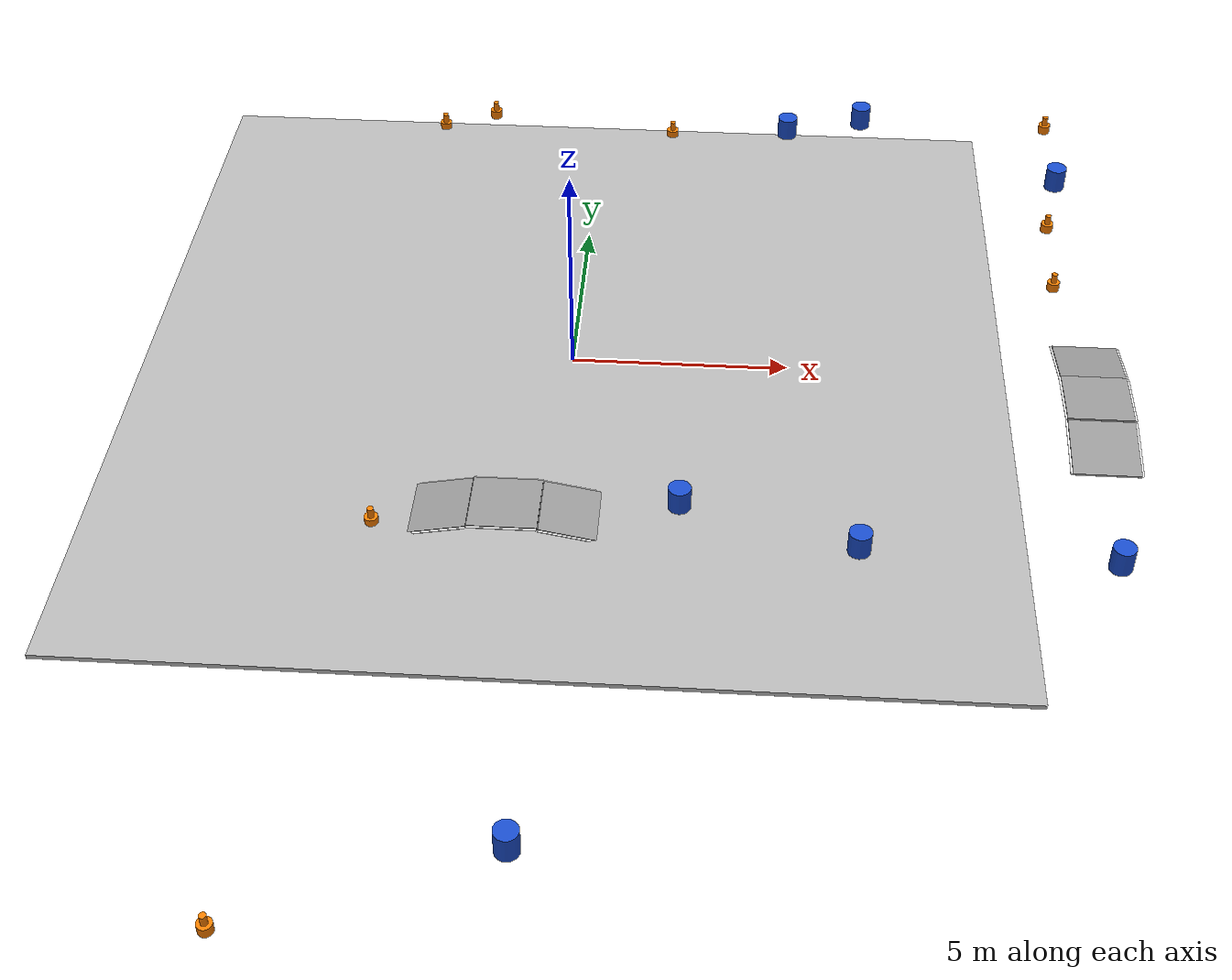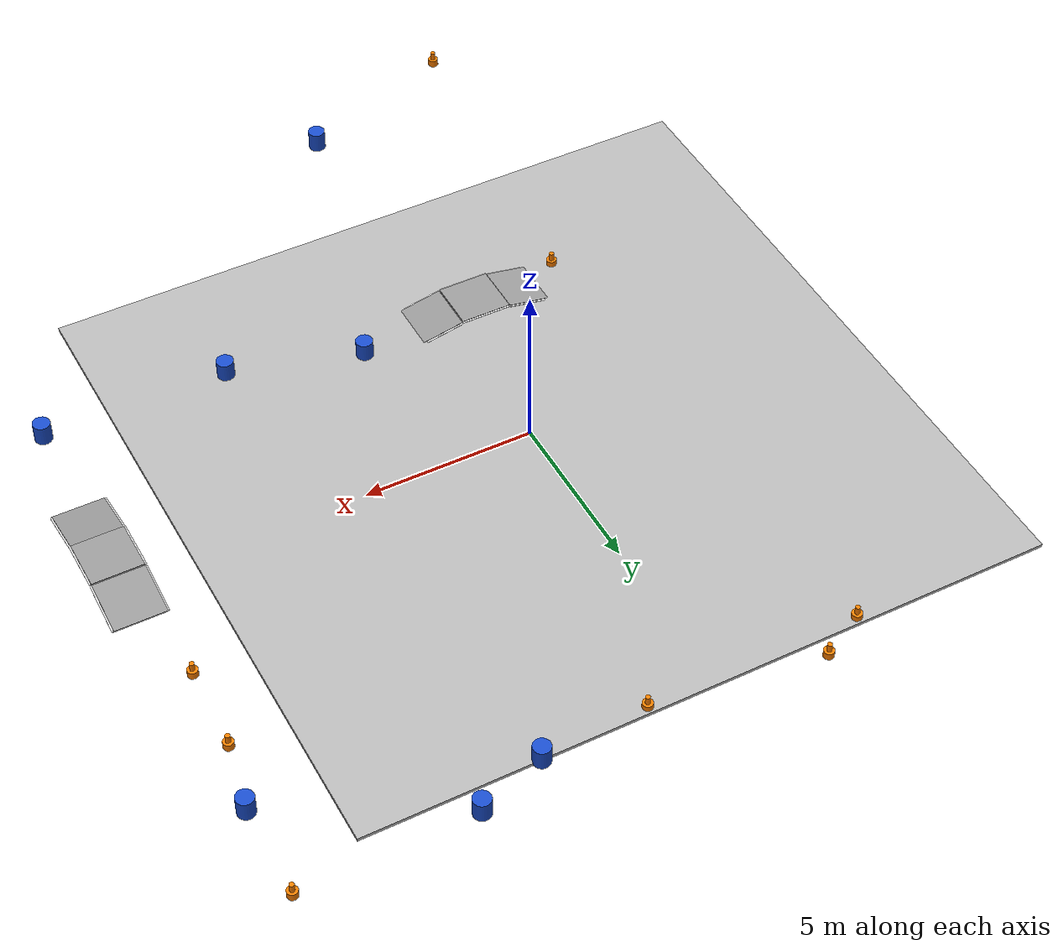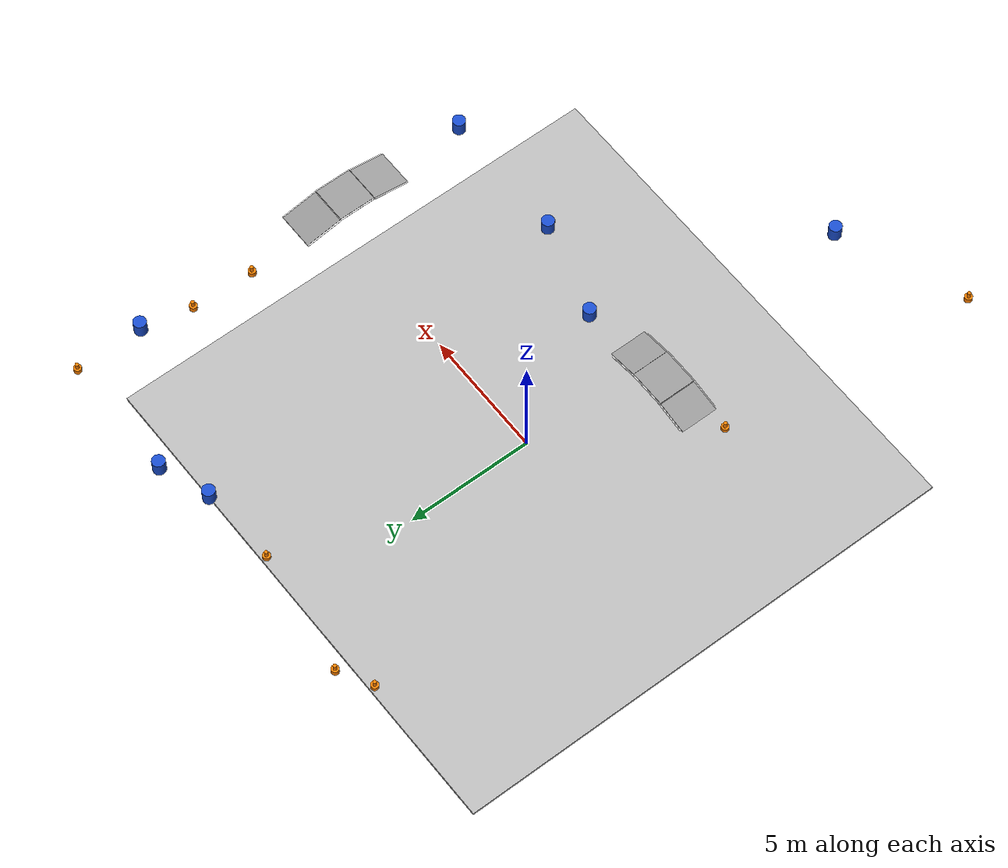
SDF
<?xml version="1.0" ?>
<sdf version="1.6">
  <world name="new_world">

    <physics type="ode">
      <max_step_size>0.001</max_step_size>
      <real_time_update_rate>1000</real_time_update_rate>
    </physics>

    <light type="directional" name="sun">
      <cast_shadows>true</cast_shadows>
      <pose>0 0 10 0 0 0</pose>
      <diffuse>1 1 1 1</diffuse>
      <specular>0.2 0.2 0.2 1</specular>
      <direction>-0.5 0.1 -0.9</direction>
    </light>

    <include>
      <uri>model://floor</uri>
      <pose>0 0 0 0 0 0</pose>
    </include>

    <gui fullscreen='0'>
      <camera name='user_camera'>
        <pose>0 -10 15 0 0.8 1.57</pose>
        <view_controller>orbit</view_controller>
      </camera>
    </gui>

    <!--######################cones##############################-->
    <include>
      <uri>model://cone</uri>
      <name>cone_1</name>
      <pose>12 10.7 0 0 0 0</pose>
    </include>

    <include>
      <uri>model://cone</uri>
      <name>cone_2</name>
      <pose>-3 10.5 0 0 0 0</pose>
    </include>

    <include>
      <uri>model://cone</uri>
      <name>cone_3</name>
      <pose>1.9 9.8 0 0 0 0</pose>
    </include>

    <include>
      <uri>model://cone</uri>
      <name>cone_4</name>
      <pose>11.5 3.5 0 0 0 0</pose>
    </include>

    <!--######################barrels##############################-->
    <include>
      <uri>model://barrel</uri>
      <name>barrel_1</name>
      <pose>2.7 -4.9 0 0 0 0</pose>
    </include>

    <include>
      <uri>model://barrel</uri>
      <name>barrel_2</name>
      <pose>5 10 0 0 0 0</pose>
    </include>

    <include>
      <uri>model://barrel</uri>
      <name>barrel_3</name>
      <pose>11.9 -6.1 0 0 0 0</pose>
    </include>

    <!--######################ramps##############################-->
    <include>
      <uri>model://ramp</uri>
      <name>ramp_1</name>
      <pose>-1 -5.3 0 0 0 0</pose>
    </include>

    <include>
      <uri>model://ramp</uri>
      <name>ramp_2</name>
      <pose>12.0 -1.0 0 0 0 -1.5708</pose>
    </include>

    <!--######################extra obstacles##############################-->
    <include>
      <uri>model://cone</uri>
      <name>c1</name>
      <pose>-4.3 9.8 0 0 0 0</pose>
    </include>

    <include>
      <uri>model://barrel</uri>
      <name>b1</name>
      <pose>7.0 10.7 0 0 0 0</pose>
    </include>

    <include>
      <uri>model://cone</uri>
      <name>c2</name>
      <pose>11.6 6.0 0 0 0 0</pose>
    </include>

    <include>
      <uri>model://barrel</uri>
      <name>b2</name>
      <pose>12.0 8.0 0 0 0 0</pose>
    </include>

    <include>
      <uri>model://barrel</uri>
      <name>b3</name>
      <pose>6.5 -6.0 0 0 0 0</pose>
    </include>

    <include>
      <uri>model://cone</uri>
      <name>c3</name>
      <pose>-3.8 -5.8 0 0 0 0</pose>
    </include>

    <include>
      <uri>model://barrel</uri>
      <name>b4</name>
      <pose>0.0 -14.0 0 0 0 0</pose>
    </include>

    <include>
      <uri>model://cone</uri>
      <name>c4</name>
      <pose>-5.0 -16.0 0 0 0 0</pose>
    </include>

  </world>
</sdf>

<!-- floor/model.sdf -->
<sdf version="1.6">
  <model name="custom_course">
    <static>true</static>
    <link name="link">
      <collision name="collision">
        <geometry>
          <box>
            <size>20 20 0.1</size> <!-- 20m x 20m wide, 10cm thick -->
          </box>
        </geometry>
      </collision>
      <visual name="visual">
        <geometry>
          <box>
            <size>20 20 0.1</size>
          </box>
        </geometry>
        <material>
          <script>
            <uri>model://floor/materials/scripts</uri>
            <uri>model://floor/materials/textures</uri>
            <name>CustomCourse/Diffuse</name>
          </script>
        </material>
      </visual>
    </link>
  </model>
</sdf>

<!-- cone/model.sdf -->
<sdf version="1.8">
  <model name="cone">
    <static>true</static>
    <link name="link">
      <!-- Base cylinder (wider bottom) -->
      <collision name="collision_base">
        <geometry>
          <cylinder>
            <radius>0.15</radius>
            <length>0.22</length>
          </cylinder>
        </geometry>
        <pose>0 0 0.11 0 0 0</pose>
      </collision>
      <visual name="visual_base">
        <geometry>
          <cylinder>
            <radius>0.15</radius>
            <length>0.22</length>
          </cylinder>
        </geometry>
        <pose>0 0 0.11 0 0 0</pose>
        <material>
          <ambient>1.0 0.5 0.0 1</ambient>
          <diffuse>1.0 0.5 0.0 1</diffuse>
          <specular>0.3 0.3 0.3 1</specular>
        </material>
      </visual>
      <!-- Top cylinder (narrower top) -->
      <collision name="collision_top">
        <geometry>
          <cylinder>
            <radius>0.07</radius>
            <length>0.23</length>
          </cylinder>
        </geometry>
        <pose>0 0 0.335 0 0 0</pose>
      </collision>
      <visual name="visual_top">
        <geometry>
          <cylinder>
            <radius>0.07</radius>
            <length>0.23</length>
          </cylinder>
        </geometry>
        <pose>0 0 0.335 0 0 0</pose>
        <material>
          <ambient>1.0 0.5 0.0 1</ambient>
          <diffuse>1.0 0.5 0.0 1</diffuse>
          <specular>0.3 0.3 0.3 1</specular>
        </material>
      </visual>
    </link>
  </model>
</sdf>

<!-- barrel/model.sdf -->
<sdf version="1.8">
  <model name="barrel">
    <static>true</static>
    <link name="link">
      <collision name="collision">
        <geometry>
          <cylinder>
            <radius>0.25</radius>
            <length>0.6</length>
          </cylinder>
        </geometry>
        <pose>0 0 0.3 0 0 0</pose>
      </collision>
      <visual name="visual">
        <geometry>
          <cylinder>
            <radius>0.25</radius>
            <length>0.6</length>
          </cylinder>
        </geometry>
        <pose>0 0 0.3 0 0 0</pose>
        <material>
          <ambient>0.1 0.3 0.8 1</ambient>
          <diffuse>0.1 0.3 0.8 1</diffuse>
          <specular>0.3 0.3 0.3 1</specular>
        </material>
      </visual>
    </link>
  </model>
</sdf>

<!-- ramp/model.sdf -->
<sdf version="1.8">
  <model name="ramp">
    <static>true</static>

    <!-- Up slope -->
    <link name="up_slope">
      <pose>-1.5 0 0.125 0 -0.1963 0</pose>
      <collision name="collision">
        <geometry><box><size>1.5 1.5 0.05</size></box></geometry>
        <surface>
          <friction><ode><mu>1.0</mu><mu2>1.0</mu2></ode></friction>
        </surface>
      </collision>
      <visual name="visual">
        <geometry><box><size>1.5 1.5 0.05</size></box></geometry>
        <material>
          <ambient>0.5 0.5 0.5 1</ambient>
          <diffuse>0.6 0.6 0.6 1</diffuse>
        </material>
      </visual>
    </link>

    <!-- Up slope lane lines -->
    <link name="up_slope_lane_left">
      <pose>-1.5 0.75 0.125 0 -0.1963 0</pose>
      <visual name="visual">
        <geometry><box><size>1.5 0.1 0.01</size></box></geometry>
        <material>
          <ambient>1 1 1 1</ambient>
          <diffuse>1 1 1 1</diffuse>
          <emissive>1 1 1 1</emissive>
        </material>
      </visual>
    </link>
    <link name="up_slope_lane_right">
      <pose>-1.5 -0.75 0.125 0 -0.1963 0</pose>
      <visual name="visual">
        <geometry><box><size>1.5 0.1 0.01</size></box></geometry>
        <material>
          <ambient>1 1 1 1</ambient>
          <diffuse>1 1 1 1</diffuse>
          <emissive>1 1 1 1</emissive>
        </material>
      </visual>
    </link>

    <!-- Flat top -->
    <link name="flat_top">
      <pose>0 0 0.3 0 0 0</pose>
      <collision name="collision">
        <geometry><box><size>1.5 1.5 0.05</size></box></geometry>
        <surface>
          <friction><ode><mu>1.0</mu><mu2>1.0</mu2></ode></friction>
        </surface>
      </collision>
      <visual name="visual">
        <geometry><box><size>1.5 1.5 0.05</size></box></geometry>
        <material>
          <ambient>0.5 0.5 0.5 1</ambient>
          <diffuse>0.6 0.6 0.6 1</diffuse>
        </material>
      </visual>
    </link>

    <!-- Flat top lane lines -->
    <link name="flat_top_lane_left">
      <pose>0 0.75 0.3 0 0 0</pose>
      <visual name="visual">
        <geometry><box><size>1.5 0.1 0.01</size></box></geometry>
        <material>
          <ambient>1 1 1 1</ambient>
          <diffuse>1 1 1 1</diffuse>
          <emissive>1 1 1 1</emissive>
        </material>
      </visual>
    </link>
    <link name="flat_top_lane_right">
      <pose>0 -0.75 0.3 0 0 0</pose>
      <visual name="visual">
        <geometry><box><size>1.5 0.1 0.01</size></box></geometry>
        <material>
          <ambient>1 1 1 1</ambient>
          <diffuse>1 1 1 1</diffuse>
          <emissive>1 1 1 1</emissive>
        </material>
      </visual>
    </link>

    <!-- Down slope -->
    <link name="down_slope">
      <pose>1.5 0 0.125 0 0.1963 0</pose>
      <collision name="collision">
        <geometry><box><size>1.5 1.5 0.05</size></box></geometry>
        <surface>
          <friction><ode><mu>1.0</mu><mu2>1.0</mu2></ode></friction>
        </surface>
      </collision>
      <visual name="visual">
        <geometry><box><size>1.5 1.5 0.05</size></box></geometry>
        <material>
          <ambient>0.5 0.5 0.5 1</ambient>
          <diffuse>0.6 0.6 0.6 1</diffuse>
        </material>
      </visual>
    </link>

    <!-- Down slope lane lines -->
    <link name="down_slope_lane_left">
      <pose>1.5 0.75 0.125 0 0.1963 0</pose>
      <visual name="visual">
        <geometry><box><size>1.5 0.1 0.01</size></box></geometry>
        <material>
          <ambient>1 1 1 1</ambient>
          <diffuse>1 1 1 1</diffuse>
          <emissive>1 1 1 1</emissive>
        </material>
      </visual>
    </link>
    <link name="down_slope_lane_right">
      <pose>1.5 -0.75 0.125 0 0.1963 0</pose>
      <visual name="visual">
        <geometry><box><size>1.5 0.1 0.01</size></box></geometry>
        <material>
          <ambient>1 1 1 1</ambient>
          <diffuse>1 1 1 1</diffuse>
          <emissive>1 1 1 1</emissive>
        </material>
      </visual>
    </link>

  </model>
</sdf>
